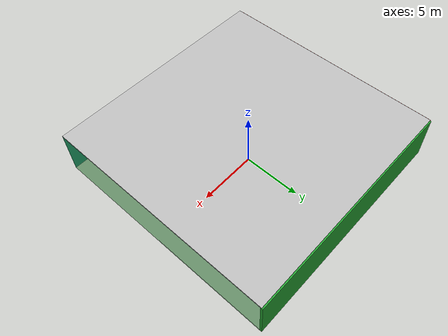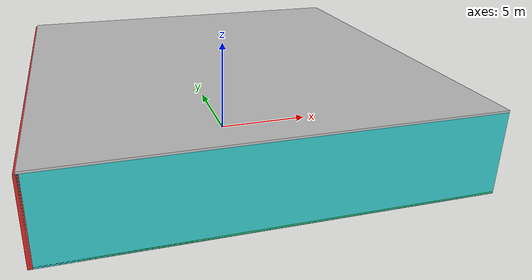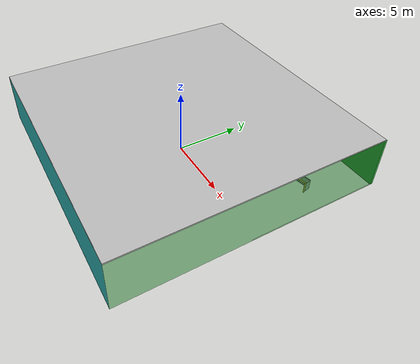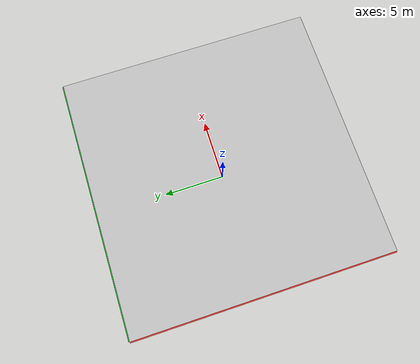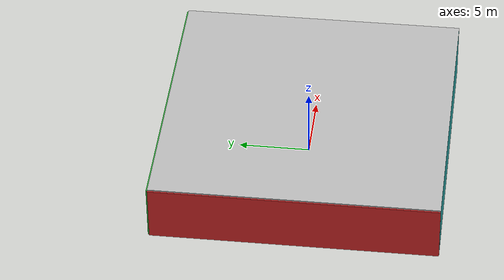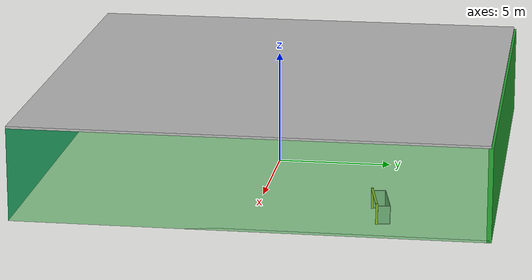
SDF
<sdf version="1.4">
 <world name="default">
  <physics type="ode">
   <max_step_size>0.001</max_step_size>
   <real_time_factor>1</real_time_factor>
   <real_time_update_rate>1000</real_time_update_rate>
   <gravity>0 0 -9.8</gravity>
  </physics>
  <scene><ambient>0.4 0.4 0.4 1</ambient><background>0.7 0.7 0.7 1</background><shadows>1</shadows></scene>
  <model name="Surrounding">
   <static>1</static>
   <link name="Ceiling">
    <collision name="Ceiling_Collision"><geometry><box><size>20 20 0.1</size></box></geometry></collision>
    <visual name="Ceiling_Visual">
     <geometry><box><size>20 20 0.1</size></box></geometry>
     <material>
      <script><uri>file://media/materials/scripts/gazebo.material</uri><name>Gazebo/JointAnchor</name></script>
     </material>
    </visual>
    <pose>0 0 4.05 0 0 0</pose>
   </link>
   <link name="Wall_South">
    <collision name="Wall_South_Collision">
     <geometry><box><size>20 0 4</size></box></geometry>
     <pose>0 0 2 0 -0 0</pose>
    </collision>
    <visual name="Wall_South_Visual">
     <pose>0 0 2 0 -0 0</pose>
     <geometry><box><size>20 0 4</size></box></geometry>
     <material>
      <script>
       <uri>file://media/materials/scripts/gazebo.material</uri>
       <name>Gazebo/TurquoiseGlowOutline</name>
      </script>
     </material>
    </visual>
    <velocity_decay><linear>0</linear><angular>0</angular></velocity_decay>
    <pose>0 -10 0 0 -0 0</pose>
   </link>
   <link name="Wall_East">
    <collision name="Wall_21_Collision">
     <geometry><box><size>20 0 4</size></box></geometry>
     <pose>0 0 2 0 -0 0</pose>
    </collision>
    <visual name="Wall_21_Visual">
     <pose>0 0 2 0 -0 0</pose>
     <geometry><box><size>20 0 4</size></box></geometry>
     <material>
      <script><uri>file://media/materials/scripts/gazebo.material</uri><name>Gazebo/GreenTransparent</name></script>
     </material>
    </visual>
    <velocity_decay><linear>0</linear><angular>0</angular></velocity_decay>
    <pose>10 0 0 0 -0 1.5708</pose>
   </link>
   <link name="Wall_North">
    <collision name="Wall_22_Collision">
     <geometry><box><size>20 0.2 4</size></box></geometry>
     <pose>0 0 2 0 -0 0</pose>
    </collision>
    <visual name="Wall_22_Visual">
     <pose>0 0 2 0 -0 0</pose>
     <geometry><box><size>20 0.2 4</size></box></geometry>
     <material>
      <script><uri>file://media/materials/scripts/gazebo.material</uri><name>Gazebo/GreenGlow</name></script>
     </material>
    </visual>
    <velocity_decay><linear>0</linear><angular>0</angular></velocity_decay>
    <pose>0 10 0 0 -0 0</pose>
   </link>
   <link name="Wall_West">
    <collision name="Wall_23_Collision">
     <geometry><box><size>20 0.2 4</size></box></geometry>
     <pose>0 0 2 0 -0 0</pose>
    </collision>
    <visual name="Wall_23_Visual">
     <pose>0 0 2 0 -0 0</pose>
     <geometry><box><size>20 0.2 4</size></box></geometry>
     <material>
      <script><uri>file://media/materials/scripts/gazebo.material</uri><name>Gazebo/RedBright</name></script>
     </material>
    </visual>
    <velocity_decay><linear>0</linear><angular>0</angular></velocity_decay>
    <pose>-10 0 0 0 0 -1.5708</pose>
   </link>
   <link name="Ground_link">
    <collision name="collision">
     <pose>0 0 .05 0 -0 0</pose>
     <geometry><box><size>20 20 0.1</size></box></geometry>
    </collision>
    <visual name="visual">
     <pose>0 0 .05 0 -0 0</pose>
     <geometry><box><size>20 20 0.1</size></box></geometry>
     <material>
      <script><uri>file://media/materials/scripts/gazebo.material</uri><name>Gazebo/GreenTransparent</name></script>
     </material>
    </visual>
   </link>
   <static>1</static>
  </model>
  <spherical_coordinates>
   <surface_model>EARTH_WGS84</surface_model>
   <latitude_deg>0</latitude_deg>
   <longitude_deg>0</longitude_deg>
   <elevation>0</elevation>
   <heading_deg>0</heading_deg>
  </spherical_coordinates>
  <light name="lightball_0" type="diffuse">
   <diffuse>0.8 0.8 0.8 1</diffuse>
   <specular>0.2 0.2 0.2 1</specular>
   <attenuation>
    <range>100</range>
    <constant>0.7</constant>
    <linear>0.01</linear>
    <quadratic>0.001</quadratic>
   </attenuation>
   <direction>-0.5 0.1 -0.9</direction>
   <pose>0.649503941348 4.81279917806 3.52187111425 0 0 0</pose>
  </light>
  <light name="lightball_1" type="diffuse">
   <diffuse>0.8 0.8 0.8 1</diffuse>
   <specular>0.2 0.2 0.2 1</specular>
   <attenuation>
    <range>100</range>
    <constant>0.7</constant>
    <linear>0.01</linear>
    <quadratic>0.001</quadratic>
   </attenuation>
   <direction>-0.5 0.1 -0.9</direction>
   <pose>-0.175141159681 0.284645969938 2.3016843034 0 0 0</pose>
  </light>
  <light name="lightball_2" type="diffuse">
   <diffuse>0.8 0.8 0.8 1</diffuse>
   <specular>0.2 0.2 0.2 1</specular>
   <attenuation>
    <range>100</range>
    <constant>0.7</constant>
    <linear>0.01</linear>
    <quadratic>0.001</quadratic>
   </attenuation>
   <direction>-0.5 0.1 -0.9</direction>
   <pose>-7.14200600376 7.93301626909 2.16908082639 0 0 0</pose>
  </light>
  <light name="lightball_3" type="diffuse">
   <diffuse>0.8 0.8 0.8 1</diffuse>
   <specular>0.2 0.2 0.2 1</specular>
   <attenuation>
    <range>100</range>
    <constant>0.7</constant>
    <linear>0.01</linear>
    <quadratic>0.001</quadratic>
   </attenuation>
   <direction>-0.5 0.1 -0.9</direction>
   <pose>-0.654583256258 -0.103296357032 3.02575751281 0 0 0</pose>
  </light>
  <light name="lightball_4" type="diffuse">
   <diffuse>0.8 0.8 0.8 1</diffuse>
   <specular>0.2 0.2 0.2 1</specular>
   <attenuation>
    <range>100</range>
    <constant>0.7</constant>
    <linear>0.01</linear>
    <quadratic>0.001</quadratic>
   </attenuation>
   <direction>-0.5 0.1 -0.9</direction>
   <pose>-1.99225974305 6.85404918527 2.80186187247 0 0 0</pose>
  </light>
  <light name="lightball_5" type="diffuse">
   <diffuse>0.8 0.8 0.8 1</diffuse>
   <specular>0.2 0.2 0.2 1</specular>
   <attenuation>
    <range>100</range>
    <constant>0.7</constant>
    <linear>0.01</linear>
    <quadratic>0.001</quadratic>
   </attenuation>
   <direction>-0.5 0.1 -0.9</direction>
   <pose>6.283410284 8.29398418432 2.70510882275 0 0 0</pose>
  </light>
  <light name="lightball_6" type="diffuse">
   <diffuse>0.8 0.8 0.8 1</diffuse>
   <specular>0.2 0.2 0.2 1</specular>
   <attenuation>
    <range>100</range>
    <constant>0.7</constant>
    <linear>0.01</linear>
    <quadratic>0.001</quadratic>
   </attenuation>
   <direction>-0.5 0.1 -0.9</direction>
   <pose>-6.59174083833 -1.24867675854 1.87720295038 0 0 0</pose>
  </light>
  <light name="lightball_7" type="diffuse">
   <diffuse>0.8 0.8 0.8 1</diffuse>
   <specular>0.2 0.2 0.2 1</specular>
   <attenuation>
    <range>100</range>
    <constant>0.7</constant>
    <linear>0.01</linear>
    <quadratic>0.001</quadratic>
   </attenuation>
   <direction>-0.5 0.1 -0.9</direction>
   <pose>1.091805598 4.47527004925 1.05727514439 0 0 0</pose>
  </light>
  <light name="lightball_8" type="diffuse">
   <diffuse>0.8 0.8 0.8 1</diffuse>
   <specular>0.2 0.2 0.2 1</specular>
   <attenuation>
    <range>100</range>
    <constant>0.7</constant>
    <linear>0.01</linear>
    <quadratic>0.001</quadratic>
   </attenuation>
   <direction>-0.5 0.1 -0.9</direction>
   <pose>-5.89382889118 -0.572763077525 1.63230059442 0 0 0</pose>
  </light>
  <light name="lightball_9" type="diffuse">
   <diffuse>0.8 0.8 0.8 1</diffuse>
   <specular>0.2 0.2 0.2 1</specular>
   <attenuation>
    <range>100</range>
    <constant>0.7</constant>
    <linear>0.01</linear>
    <quadratic>0.001</quadratic>
   </attenuation>
   <direction>-0.5 0.1 -0.9</direction>
   <pose>-7.15132250654 2.87349363877 3.02625650157 0 0 0</pose>
  </light>
  <light name="lightball_10" type="diffuse">
   <diffuse>0.8 0.8 0.8 1</diffuse>
   <specular>0.2 0.2 0.2 1</specular>
   <attenuation>
    <range>100</range>
    <constant>0.7</constant>
    <linear>0.01</linear>
    <quadratic>0.001</quadratic>
   </attenuation>
   <direction>-0.5 0.1 -0.9</direction>
   <pose>0.62189706757 -0.826395461221 1.12800594744 0 0 0</pose>
  </light>
  <light name="lightball_11" type="diffuse">
   <diffuse>0.8 0.8 0.8 1</diffuse>
   <specular>0.2 0.2 0.2 1</specular>
   <attenuation>
    <range>100</range>
    <constant>0.7</constant>
    <linear>0.01</linear>
    <quadratic>0.001</quadratic>
   </attenuation>
   <direction>-0.5 0.1 -0.9</direction>
   <pose>0.736716302897 8.82525796302 2.06952192042 0 0 0</pose>
  </light>
  <include><uri>model://cabinet</uri><pose>-7.44757807799 -1.40703545514 0 0 0 0.0651918038641</pose></include>
  <include>
   <uri>model://construction_cone</uri>
   <pose>-3.96228805732 -7.58194049218 0 0 0 2.2200227578</pose>
  </include>
  <include>
   <uri>model://robocup_3Dsim_goal</uri>
   <pose>7.2476895551 5.04674559915 0 0 0 1.76268987157</pose>
  </include>
 </world>
</sdf>

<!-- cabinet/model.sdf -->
<sdf version="1.5">
  <model name="cabinet">
    <static>true</static>
    <link name="cabinet_bottom_plate">
      <inertial>
        <pose>0 0 -1 0 0 0</pose>
        <inertia>
          <ixx>2.050000</ixx>
          <ixy>0</ixy>
          <ixz>0</ixz>
          <iyy>2.050000</iyy>
          <iyz>0</iyz>
          <izz>2.050000</izz>
        </inertia>
        <mass>25.000000</mass>
      </inertial>
      <collision name="cabinet_bottom_plate_geom">
        <pose>0 0 0.010000 0 0 0</pose>
        <geometry>
          <box>
            <size>0.450000 0.450000 0.020000</size>
          </box>
        </geometry>
      </collision>
      <visual name="cabinet_bottom_plate_geom_visual">
        <pose>0 0 0.010000 0 0 0</pose>
        <geometry>
          <box>
            <size>0.450000 0.450000 0.020000</size>
          </box>
        </geometry>
        <material>
          <script>
            <uri>model://media/materials/scripts/gazebo.material</uri>
            <name>Gazebo/Wood</name>
          </script>
        </material>
      </visual>
      <collision name="cabinet_bottom_plate_geom_cabinet_back_plate">
        <pose>0.235000 0 0.510000 0 0 0</pose>
        <geometry>
          <box>
            <size>0.020000 0.450000 1.020000</size>
          </box>
        </geometry>
      </collision>
      <visual name="cabinet_bottom_plate_geom_cabinet_back_plate_visual">
        <pose>0.235000 0 0.510000 0 0 0</pose>
        <geometry>
          <box>
            <size>0.020000 0.450000 1.020000</size>
          </box>
        </geometry>
        <material>
          <script>
            <uri>model://media/materials/scripts/gazebo.material</uri>
            <name>Gazebo/Wood</name>
          </script>
        </material>
      </visual>
      <collision name="cabinet_bottom_plate_geom_cabinet_left_plate">
        <pose>0 0.235000 0.510000 0 0 0</pose>
        <geometry>
          <box>
            <size>0.450000 0.020000 1.020000</size>
          </box>
        </geometry>
      </collision>
      <visual name="cabinet_bottom_plate_geom_cabinet_left_plate_visual">
        <pose>0 0.235000 0.510000 0 0 0</pose>
        <geometry>
          <box>
            <size>0.450000 0.020000 1.020000</size>
          </box>
        </geometry>
        <material>
          <script>
            <uri>model://media/materials/scripts/gazebo.material</uri>
            <name>Gazebo/Wood</name>
          </script>
        </material>
      </visual>
      <collision name="cabinet_bottom_plate_geom_cabinet_middle_plate">
        <pose>0 0 0.510000 0 0 0</pose>
        <geometry>
          <box>
            <size>0.450000 0.450000 0.020000</size>
          </box>
        </geometry>
      </collision>
      <visual name="cabinet_bottom_plate_geom_cabinet_middle_plate_visual">
        <pose>0 0 0.510000 0 0 0</pose>
        <geometry>
          <box>
            <size>0.450000 0.450000 0.020000</size>
          </box>
        </geometry>
        <material>
          <script>
            <uri>model://media/materials/scripts/gazebo.material</uri>
            <name>Gazebo/Wood</name>
          </script>
        </material>
      </visual>
      <collision name="cabinet_bottom_plate_geom_cabinet_right_plate">
        <pose>0 -0.235000 0.510000 0 0 0</pose>
        <geometry>
          <box>
            <size>0.450000 0.020000 1.020000</size>
          </box>
        </geometry>
      </collision>
      <visual name="cabinet_bottom_plate_geom_cabinet_right_plate_visual">
        <pose>0 -0.235000 0.510000 0 0 0</pose>
        <geometry>
          <box>
            <size>0.450000 0.020000 1.020000</size>
          </box>
        </geometry>
        <material>
          <script>
            <uri>model://media/materials/scripts/gazebo.material</uri>
            <name>Gazebo/Wood</name>
          </script>
        </material>
      </visual>
      <collision name="cabinet_bottom_plate_geom_cabinet_top_plate">
        <pose>0 0 1.010000 0 0 0</pose>
        <geometry>
          <box>
            <size>0.450000 0.450000 0.020000</size>
          </box>
        </geometry>
      </collision>
      <visual name="cabinet_bottom_plate_geom_cabinet_top_plate_visual">
        <pose>0 0 1.010000 0 0 0</pose>
        <geometry>
          <box>
            <size>0.450000 0.450000 0.020000</size>
          </box>
        </geometry>
        <material>
          <script>
            <uri>model://media/materials/scripts/gazebo.material</uri>
            <name>Gazebo/Wood</name>
          </script>
        </material>
      </visual>
    </link>
  </model>
</sdf>

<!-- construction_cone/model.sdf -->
<sdf version="1.5">
  <model name="Construction Cone">
    <link name="link">
      <collision name="collision">
        <geometry>
          <mesh>
            <scale>10 10 10</scale>
            <uri>file://isr-testbed/construction_cone/meshes/construction_cone.dae</uri>
          </mesh>
        </geometry>
      </collision>
      <visual name="visual">
        <geometry>
          <mesh>
            <scale>10 10 10</scale>
            <uri>file://isr-testbed/construction_cone/meshes/construction_cone.dae</uri>
          </mesh>
        </geometry>
      </visual>
    </link>
  </model>
</sdf>

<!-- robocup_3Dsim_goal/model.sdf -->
<sdf version="1.5">
  <model name="robocup_3d_goal">
    <static>true</static>
    <link name="left_post">
      <pose>0 1.05 0.45 0 0 0</pose>
      <collision name="collision">
        <geometry>
          <cylinder>
            <radius>0.05</radius>
            <length>0.9</length>
          </cylinder>
        </geometry>
      </collision>
      <visual name="visual">
        <geometry>
          <cylinder>
            <radius>0.05</radius>
            <length>0.9</length>
          </cylinder>
        </geometry>
        <material>
          <script>
            <uri>file://media/materials/scripts/gazebo.material</uri>
            <name>Gazebo/ZincYellow</name>
          </script>
        </material>
      </visual>
    </link>
    <link name="left_support_horiz_lower">
      <pose>0.30 1.05 0.01 0 0 0</pose>
      <collision name="collision">
        <geometry>
          <box>
            <size>0.50 0.02 0.02</size>
          </box>
        </geometry>
      </collision>
      <visual name="visual">
        <geometry>
          <box>
            <size>0.50 0.02 0.02</size>
          </box>
        </geometry>
        <material>
          <script>
            <uri>file://media/materials/scripts/gazebo.material</uri>
            <name>Gazebo/White</name>
          </script>
        </material>
      </visual>
    </link>
    <link name="left_support_horiz_upper">
      <pose>0.30 1.05 0.79 0 0 0</pose>
      <collision name="collision">
        <geometry>
          <box>
            <size>0.50 0.02 0.02</size>
          </box>
        </geometry>
      </collision>
      <visual name="visual">
        <geometry>
          <box>
            <size>0.50 0.02 0.02</size>
          </box>
        </geometry>
        <material>
          <script>
            <uri>file://media/materials/scripts/gazebo.material</uri>
            <name>Gazebo/White</name>
          </script>
        </material>
      </visual>
    </link>
    <link name="left_support_vertical">
      <pose>0.56 1.05 0.4 0 1.5708 0</pose>
      <collision name="collision">
        <geometry>
          <box>
            <size>0.80 0.02 0.02</size>
          </box>
        </geometry>
      </collision>
      <visual name="visual">
        <geometry>
          <box>
            <size>0.80 0.02 0.02</size>
          </box>
        </geometry>
        <material>
          <script>
            <uri>file://media/materials/scripts/gazebo.material</uri>
            <name>Gazebo/White</name>
          </script>
        </material>
      </visual>
    </link>
    <link name="right_support_horiz_lower">
      <pose>0.30 -1.05 0.01 0 0 0</pose>
      <collision name="collision">
        <geometry>
          <box>
            <size>0.50 0.02 0.02</size>
          </box>
        </geometry>
      </collision>
      <visual name="visual">
        <geometry>
          <box>
            <size>0.50 0.02 0.02</size>
          </box>
        </geometry>
        <material>
          <script>
            <uri>file://media/materials/scripts/gazebo.material</uri>
            <name>Gazebo/White</name>
          </script>
        </material>
      </visual>
    </link>
    <link name="right_support_horiz_upper">
      <pose>0.30 -1.05 0.79 0 0 0</pose>
      <collision name="collision">
        <geometry>
          <box>
            <size>0.50 0.02 0.02</size>
          </box>
        </geometry>
      </collision>
      <visual name="visual">
        <geometry>
          <box>
            <size>0.50 0.02 0.02</size>
          </box>
        </geometry>
        <material>
          <script>
            <uri>file://media/materials/scripts/gazebo.material</uri>
            <name>Gazebo/White</name>
          </script>
        </material>
      </visual>
    </link>
    <link name="right_support_vertical">
      <pose>0.56 -1.05 0.4 0 1.5708 0</pose>
      <collision name="collision">
        <geometry>
          <box>
            <size>0.80 0.02 0.02</size>
          </box>
        </geometry>
      </collision>
      <visual name="visual">
        <geometry>
          <box>
            <size>0.80 0.02 0.02</size>
          </box>
        </geometry>
        <material>
          <script>
            <uri>file://media/materials/scripts/gazebo.material</uri>
            <name>Gazebo/White</name>
          </script>
        </material>
      </visual>
    </link>
    <link name="center_support_horiz_lower">
      <pose>0.56 0 0.01 0 1.5708 0</pose>
      <collision name="collision">
        <geometry>
          <box>
            <size>0.02 2.08 0.02</size>
          </box>
        </geometry>
      </collision>
      <visual name="visual">
        <geometry>
          <box>
            <size>0.02 2.08 0.02</size>
          </box>
        </geometry>
        <material>
          <script>
            <uri>file://media/materials/scripts/gazebo.material</uri>
            <name>Gazebo/White</name>
          </script>
        </material>
      </visual>
    </link>
    <link name="center_support_horiz_upper">
      <pose>0.56 0 0.79 0 1.5708 0</pose>
      <collision name="collision">
        <geometry>
          <box>
            <size>0.02 2.08 0.02</size>
          </box>
        </geometry>
      </collision>
      <visual name="visual">
        <geometry>
          <box>
            <size>0.02 2.08 0.02</size>
          </box>
        </geometry>
        <material>
          <script>
            <uri>file://media/materials/scripts/gazebo.material</uri>
            <name>Gazebo/White</name>
          </script>
        </material>
      </visual>
    </link>
    <link name="right_post">
      <pose>0 -1.05 0.45 0 0 0</pose>
      <collision name="collision">
        <geometry>
          <cylinder>
            <radius>0.05</radius>
            <length>0.9</length>
          </cylinder>
        </geometry>
      </collision>
      <visual name="visual">
        <geometry>
          <cylinder>
            <radius>0.05</radius>
            <length>0.9</length>
          </cylinder>
        </geometry>
        <material>
          <script>
            <uri>file://media/materials/scripts/gazebo.material</uri>
            <name>Gazebo/ZincYellow</name>
          </script>
        </material>
      </visual>
    </link>
    <link name="crossbar">
      <pose>0 0 0.85 1.57 1.57 0</pose>
      <collision name="collision">
        <geometry>
          <cylinder>
            <radius>0.05</radius>
            <length>2.0</length>
          </cylinder>
        </geometry>
      </collision>
      <visual name="visual">
        <geometry>
          <cylinder>
            <radius>0.05</radius>
            <length>2.0</length>
          </cylinder>
        </geometry>
        <material>
          <script>
            <uri>file://media/materials/scripts/gazebo.material</uri>
            <name>Gazebo/ZincYellow</name>
          </script>
        </material>
      </visual>
    </link>
    <link name="center_net">
      <pose>0.56 0 0.40 0 0 0</pose>
      <collision name="collision">
        <geometry>
          <box>
            <size>0.01 2.1 0.80</size>
          </box>
        </geometry>
      </collision>
      <visual name="visual">
        <geometry>
          <box>
            <size>0.01 2.1 0.80</size>
          </box>
        </geometry>
        <material>
          <script>
            <uri>model://../model_source/models/robocup09_spl_field/materials/scripts/</uri>
            <uri>model://../model_source/models/robocup09_spl_field/materials/textures/</uri>
            <name>RoboCup/Net</name>
          </script>
        </material>
      </visual>
    </link>
    <link name="left_net">
      <pose>0.30 1.05 0.40 0 0 0</pose>
      <collision name="collision">
        <geometry>
          <box>
            <size>0.50 0.01 0.76</size>
          </box>
        </geometry>
      </collision>
      <visual name="visual">
        <geometry>
          <box>
            <size>0.50 0.01 0.76</size>
          </box>
        </geometry>
        <material>
          <script>
            <uri>model://../model_source/models/robocup09_spl_field/materials/scripts/</uri>
            <uri>model://../model_source/models/robocup09_spl_field/materials/textures/</uri>
            <name>RoboCup/Net</name>
          </script>
        </material>
      </visual>
    </link>
    <link name="right_net">
      <pose>0.30 -1.05 0.40 0 0 0</pose>
      <collision name="collision">
        <geometry>
          <box>
            <size>0.50 0.01 0.76</size>
          </box>
        </geometry>
      </collision>
      <visual name="visual">
        <geometry>
          <box>
            <size>0.50 0.01 0.76</size>
          </box>
        </geometry>
        <material>
          <script>
            <uri>model://../model_source/models/robocup09_spl_field/materials/scripts/</uri>
            <uri>model://../model_source/models/robocup09_spl_field/materials/textures/</uri>
            <name>RoboCup/Net</name>
          </script>
        </material>
      </visual>
    </link>
  </model>
</sdf>
